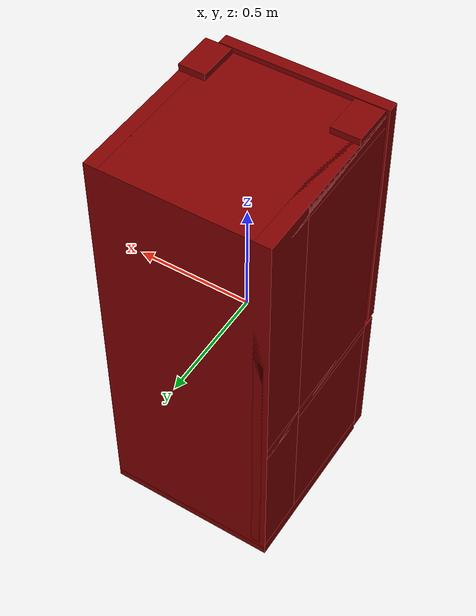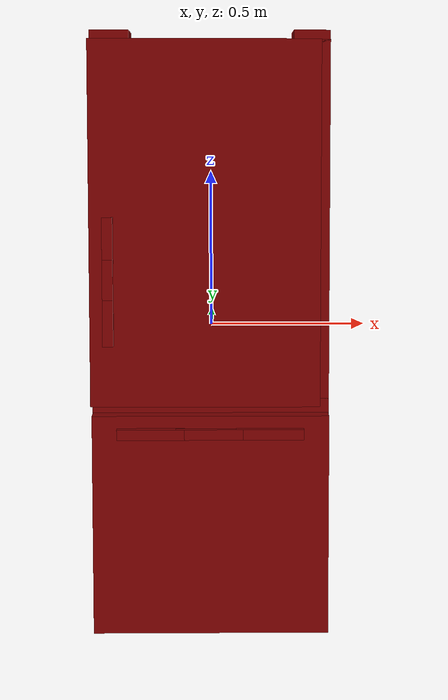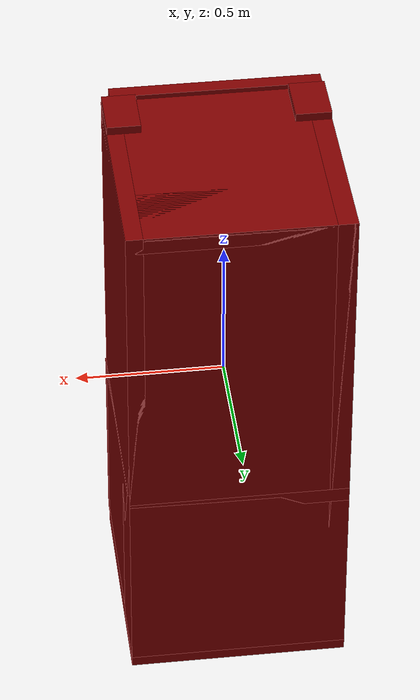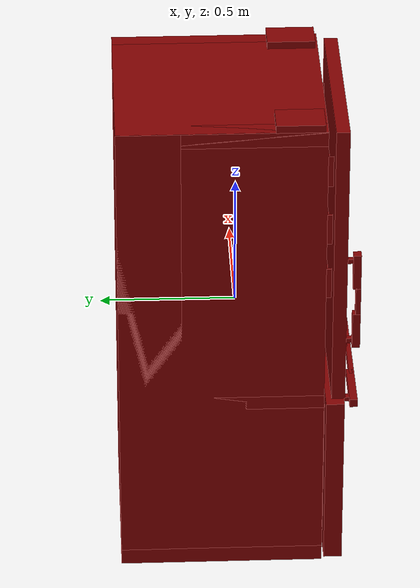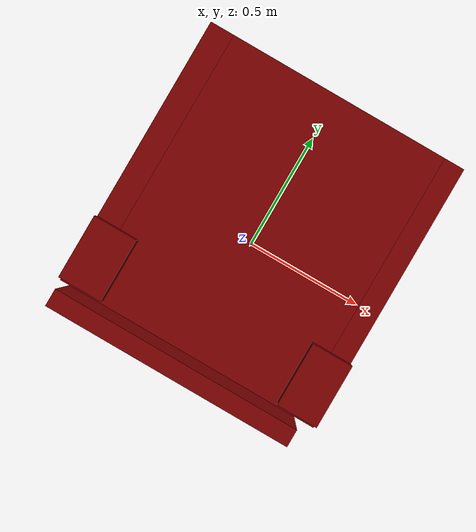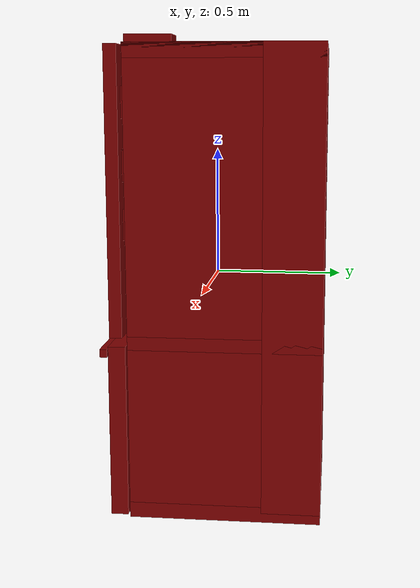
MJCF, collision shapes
<?xml version='1.0' encoding='UTF-8'?>
<mujoco model="model">
  <option timestep="0.002" gravity="0.0 0.0 -9.81"/>
  <compiler angle="radian"/>
  <asset>
    <mesh file="visuals/freezer0.obj" name="freezer0_vis"/>
    <mesh file="visuals/fridge_door.obj" name="fridge_door_vis"/>
    <mesh file="visuals/fridge_door_Clear.obj" name="fridge_door_Clear_vis"/>
    <mesh file="visuals/fridge_drawer0.obj" name="fridge_drawer0_vis"/>
    <mesh file="visuals/Body001.obj" name="Body001_vis"/>
    <texture file="visuals/T_BC001.png" name="Body001_material" type="2d"/>
    <material name="Body001_material" rgba="1 1 1 1.0" texture="Body001_material" shininess="0.1" specular="5"/>
    <texture file="visuals/T_BC001.png" name="freezer0_material" type="2d"/>
    <material name="freezer0_material" rgba="1 1 1 1.0" texture="freezer0_material" shininess="0.1" specular="5"/>
    <texture file="visuals/T_BC001.png" name="fridge_door_material" type="2d"/>
    <material name="fridge_door_material" rgba="1 1 1 1.0" texture="fridge_door_material" shininess="0.1" specular="5"/>
    <material name="fridge_door_Clear_material" rgba="0.5882353186607361 0.5882353186607361 0.5882353186607361 0.699999988079071" shininess="0.141421377658844" specular="0.3"/>
    <texture file="visuals/T_BC001.png" name="fridge_drawer0_material" type="2d"/>
    <material name="fridge_drawer0_material" rgba="1 1 1 1.0" texture="fridge_drawer0_material" shininess="0.1" specular="5"/>
  </asset>
  <default>
    <default class="visual">
      <geom conaffinity="0" contype="0" group="1" type="mesh"/>
    </default>
    <default class="collision">
      <geom group="0" rgba="0.5 0 0 0.5" density="1000.0"/>
    </default>
    <default class="spawn">
      <geom group="0" rgba="1 1 1 0.5" contype="0" conaffinity="0"/>
      <site group="0" rgba="1 1 1 0.5"/>
    </default>
    <default class="region">
      <geom group="1" conaffinity="0" contype="0" rgba="0 1 0 0" mass="0"/>
    </default>
  </default>
  <worldbody>
    <body>
      <body name="object">
        <geom mesh="Body001_vis" type="mesh" solimp="0.998 0.998 0.001" solref="0.001 1" friction="0.95 0.3 0.1" class="visual" material="Body001_material"/>
        <geom class="collision" type="box" pos="0.00000000 0.32476748 0.00438844" size="0.36860865354537964 0.11534851789474487 0.9032153487205505" quat="1.0 0.0 0.0 0.0"/>
        <geom class="collision" type="box" pos="0.34039435 0.06442849 0.01505143" size="0.02821429818868637 0.37568747997283936 0.8925526738166809" quat="1.0 0.0 0.0 0.0"/>
        <geom class="collision" type="box" pos="-0.33534691 0.06442849 0.01678793" size="0.0332617461681366 0.37568747997283936 0.8908159732818604" quat="1.0 0.0 0.0 0.0"/>
        <geom class="collision" type="box" pos="-0.00000001 0.06442849 -0.90437014" size="0.36860865354537964 0.37568747997283936 0.03111211210489273" quat="1.0 0.0 0.0 0.0"/>
        <geom class="collision" type="box" pos="-0.00000001 0.06442849 -0.22521112" size="0.36860865354537964 0.37568747997283936 0.02653501182794571" quat="1.0 0.0 0.0 0.0"/>
        <geom class="collision" type="box" pos="-0.00000001 0.06442849 0.87887465" size="0.36860865354537964 0.37568747997283936 0.028729252517223358" quat="1.0 0.0 0.0 0.0"/>
        <geom class="collision" type="box" pos="0.00487410 -0.02653749 0.51555984" size="0.30914589762687683 0.23776639997959137 0.0036524159368127584" quat="1.0 0.0 0.0 0.0"/>
        <geom class="collision" type="box" pos="0.00932745 -0.02653774 0.15526479" size="0.31359925866127014 0.23776637017726898 0.0036524743773043156" quat="1.0 0.0 0.0 0.0"/>
        <geom class="collision" type="box" pos="-0.30858055 -0.21340834 0.92115354" size="0.06002810597419739 0.08773642778396606 0.014327946119010448" quat="1.0 0.0 0.0 0.0"/>
        <geom class="collision" type="box" pos="0.31252167 -0.21340834 0.92115354" size="0.056086938828229904 0.08773642778396606 0.014327946119010448" quat="1.0 0.0 0.0 0.0"/>
        <body name="freezer0">
          <geom class="region" name="reg_freezer0" type="box" pos="0.0005977600000000027 -0.06814390999999999 -0.577884075" size="0.26197484 0.24580666 0.274555175"/>
          <joint axis="0.0 -1.0 0.0" pos="0.00016387 -0.11970034 -0.58081520" limited="true" name="freezer0_door_joint" range="0.0 0.45" type="slide" damping="1" frictionloss="1" armature=".01" stiffness="0.05"/>
          <geom mesh="freezer0_vis" type="mesh" solimp="0.998 0.998 0.001" solref="0.001 1" friction="0.95 0.3 0.1" class="visual" material="freezer0_material"/>
          <geom class="collision" type="box" pos="0.00016384 -0.35371634 -0.58450116" size="0.3652464747428894 0.033932894468307495 0.34308695793151855" quat="1.0 0.0 0.0 0.0" name="freezer0_door_main"/>
          <geom class="collision" type="box" pos="-0.00035763 -0.06191284 -0.85908920" size="0.2865025997161865 0.25947532057762146 0.0022460094187408686" quat="1.0 0.0 0.0 0.0"/>
          <geom class="collision" type="box" pos="-0.00087134 0.19639329 -0.57960100" size="0.2749098837375641 0.003318801522254944 0.2808021008968353" quat="1.0 0.0 0.0 0.0"/>
          <geom class="collision" type="box" pos="0.27108222 -0.06490180 -0.57960100" size="0.0029563254211097956 0.2588312029838562 0.28077781200408936" quat="1.0 0.0 0.0 0.0"/>
          <geom class="collision" type="box" pos="-0.27374226 -0.06494858 -0.57960100" size="0.0020535786170512438 0.2587832510471344 0.2807766795158386" quat="1.0 0.0 0.0 0.0"/>
          <geom class="collision" type="box" pos="-0.00307937 -0.43198093 -0.29061986" size="0.10273987799882889 0.009457274340093136 0.016109464690089226" quat="1.0 0.0 0.0 0.0" name="freezer0_door_handle_main"/>
          <geom class="collision" type="box" pos="0.18242517 -0.42649262 -0.29061986" size="0.10332302004098892 0.014605683274567127 0.01610950194299221" quat="1.0 0.0 0.0 0.0" name="freezer0_door_handle_1"/>
          <geom class="collision" type="box" pos="-0.18266273 -0.42691731 -0.29061989" size="0.10332286357879639 0.014605638571083546 0.016109472140669823" quat="1.0 0.0 0.0 0.0" name="freezer0_door_handle_2"/>
          <geom class="collision" type="box" pos="0.24477845 -0.40195005 -0.29015333" size="0.012766133062541485 0.014697722159326077 0.008703116327524185" quat="1.0 0.0 0.0 0.0" name="freezer0_door_handle_3"/>
          <geom class="collision" type="box" pos="-0.24687779 -0.40195005 -0.29015336" size="0.01276610791683197 0.014697697944939137 0.008703097701072693" quat="1.0 0.0 0.0 0.0" name="freezer0_door_handle_4"/>
        </body>
        <body name="fridge_door">
          <joint axis="0.0 0.0 1.0" pos="0.33044082 -0.35018053 0.34318551" limited="true" name="fridge_door_joint" range="0.0 1.5707963267948966" type="hinge" damping="1" frictionloss="1" armature=".01" stiffness="0.05"/>
          <geom mesh="fridge_door_vis" type="mesh" solimp="0.998 0.998 0.001" solref="0.001 1" friction="0.95 0.3 0.1" class="visual" material="fridge_door_material"/>
          <geom class="collision" type="box" pos="-0.01586867 -0.36280634 0.34565841" size="0.35274001955986023 0.024842990562319756 0.5588772296905518" quat="1.0 0.0 0.0 0.0" name="fridge_door_main"/>
          <geom class="collision" type="box" pos="-0.31026670 -0.40195005 0.34252369" size="0.0087030790746212 0.014697672799229622 0.008720160461962223" quat="1.0 0.0 0.0 0.0" name="fridge_door_handle_3"/>
          <geom class="collision" type="box" pos="-0.31026670 -0.40195005 0.00668682" size="0.0087030790746212 0.014697672799229622 0.008720160461962223" quat="1.0 0.0 0.0 0.0" name="fridge_door_handle_4"/>
          <geom class="collision" type="box" pos="-0.30980018 -0.42649262 0.29993188" size="0.016111290082335472 0.014606554061174393 0.07058488577604294" quat="1.0 0.0 0.0 0.0" name="fridge_door_handle_1"/>
          <geom class="collision" type="box" pos="-0.30980018 -0.42691731 0.05055036" size="0.016111230477690697 0.014606510289013386 0.07058458030223846" quat="1.0 0.0 0.0 0.0" name="fridge_door_handle_2"/>
          <geom class="collision" type="box" pos="-0.30980018 -0.43198093 0.17321882" size="0.016111161559820175 0.009458071552217007 0.07018616050481796" quat="1.0 0.0 0.0 0.0" name="fridge_door_handle_main"/>
          <geom class="collision" type="box" pos="0.00294145 -0.35718756 0.44902595" size="0.2734219431877136 0.0029092642944306135 0.0609610341489315" quat="1.0 0.0 0.0 0.0"/>
          <geom class="collision" type="box" pos="0.00294145 -0.35718756 0.68996351" size="0.2734219431877136 0.0029092642944306135 0.060961026698350906" quat="1.0 0.0 0.0 0.0"/>
          <geom class="collision" type="box" pos="0.00294145 -0.35718756 0.22273982" size="0.2734219431877136 0.0029092642944306135 0.0609610341489315" quat="1.0 0.0 0.0 0.0"/>
          <geom class="collision" type="box" pos="0.00350003 -0.26537450 0.22273982" size="0.26612183451652527 0.0029092642944306135 0.0609610341489315" quat="1.0 0.0 0.0 0.0"/>
          <geom class="collision" type="box" pos="0.00350003 -0.26537450 0.68996351" size="0.26612183451652527 0.0029092642944306135 0.060961026698350906" quat="1.0 0.0 0.0 0.0"/>
          <geom class="collision" type="box" pos="0.00350003 -0.26537450 0.45017417" size="0.26612183451652527 0.0029092642944306135 0.0609610341489315" quat="1.0 0.0 0.0 0.0"/>
          <geom class="collision" type="box" pos="-0.26637334 -0.31128072 0.22273984" size="0.002909292932599783 0.048264432698488235 0.0609610341489315" quat="1.0 0.0 0.0 0.0"/>
          <geom class="collision" type="box" pos="-0.26637334 -0.31128072 0.68996351" size="0.002909292932599783 0.048264432698488235 0.060961026698350906" quat="1.0 0.0 0.0 0.0"/>
          <geom class="collision" type="box" pos="-0.26637334 -0.31128072 0.44902595" size="0.002909292932599783 0.048264432698488235 0.0609610341489315" quat="1.0 0.0 0.0 0.0"/>
          <geom class="collision" type="box" pos="0.27257055 -0.31128066 0.22273984" size="0.0029092931654304266 0.048264432698488235 0.0609610341489315" quat="1.0 0.0 0.0 0.0"/>
          <geom class="collision" type="box" pos="0.27257055 -0.31128066 0.68996351" size="0.0029092931654304266 0.048264432698488235 0.060961026698350906" quat="1.0 0.0 0.0 0.0"/>
          <geom class="collision" type="box" pos="0.27257055 -0.31128066 0.45017417" size="0.0029092931654304266 0.048264432698488235 0.0609610341489315" quat="1.0 0.0 0.0 0.0"/>
          <geom class="collision" type="box" pos="0.00350003 -0.31131911 0.16515448" size="0.26612183451652527 0.04291462525725365 0.003375692293047905" quat="1.0 0.0 0.0 0.0"/>
          <geom class="collision" type="box" pos="0.00350003 -0.31131911 0.63237815" size="0.26612183451652527 0.04291462525725365 0.0033756857737898827" quat="1.0 0.0 0.0 0.0"/>
          <geom class="collision" type="box" pos="0.00350003 -0.31131911 0.39144059" size="0.26612183451652527 0.04291462525725365 0.0033756988123059273" quat="1.0 0.0 0.0 0.0"/>
          <body name="fridge_door_Clear">
            <geom mesh="fridge_door_Clear_vis" type="mesh" solimp="0.998 0.998 0.001" solref="0.001 1" friction="0.95 0.3 0.1" class="visual" material="fridge_door_Clear_material"/>
            <geom class="collision" type="box" pos="0.00294145 -0.35718756 0.44902595" size="0.2734219431877136 0.0029092642944306135 0.0609610341489315" quat="1.0 0.0 0.0 0.0"/>
            <geom class="collision" type="box" pos="0.00294145 -0.35718756 0.68996351" size="0.2734219431877136 0.0029092642944306135 0.060961026698350906" quat="1.0 0.0 0.0 0.0"/>
            <geom class="collision" type="box" pos="0.00294145 -0.35718756 0.22273982" size="0.2734219431877136 0.0029092642944306135 0.0609610341489315" quat="1.0 0.0 0.0 0.0"/>
            <geom class="collision" type="box" pos="0.00350003 -0.26537450 0.22273982" size="0.26612183451652527 0.0029092642944306135 0.0609610341489315" quat="1.0 0.0 0.0 0.0"/>
            <geom class="collision" type="box" pos="0.00350003 -0.26537450 0.68996351" size="0.26612183451652527 0.0029092642944306135 0.060961026698350906" quat="1.0 0.0 0.0 0.0"/>
            <geom class="collision" type="box" pos="0.00350003 -0.26537450 0.45017417" size="0.26612183451652527 0.0029092642944306135 0.0609610341489315" quat="1.0 0.0 0.0 0.0"/>
            <geom class="collision" type="box" pos="-0.26637334 -0.31128072 0.22273984" size="0.002909292932599783 0.048264432698488235 0.0609610341489315" quat="1.0 0.0 0.0 0.0"/>
            <geom class="collision" type="box" pos="-0.26637334 -0.31128072 0.68996351" size="0.002909292932599783 0.048264432698488235 0.060961026698350906" quat="1.0 0.0 0.0 0.0"/>
            <geom class="collision" type="box" pos="-0.26637334 -0.31128072 0.44902595" size="0.002909292932599783 0.048264432698488235 0.0609610341489315" quat="1.0 0.0 0.0 0.0"/>
            <geom class="collision" type="box" pos="0.27257055 -0.31128066 0.22273984" size="0.0029092931654304266 0.048264432698488235 0.0609610341489315" quat="1.0 0.0 0.0 0.0"/>
            <geom class="collision" type="box" pos="0.27257055 -0.31128066 0.68996351" size="0.0029092931654304266 0.048264432698488235 0.060961026698350906" quat="1.0 0.0 0.0 0.0"/>
            <geom class="collision" type="box" pos="0.27257055 -0.31128066 0.45017417" size="0.0029092931654304266 0.048264432698488235 0.0609610341489315" quat="1.0 0.0 0.0 0.0"/>
            <geom class="collision" type="box" pos="0.00350003 -0.31131911 0.16515448" size="0.26612183451652527 0.04291462525725365 0.003375692293047905" quat="1.0 0.0 0.0 0.0"/>
            <geom class="collision" type="box" pos="0.00350003 -0.31131911 0.63237815" size="0.26612183451652527 0.04291462525725365 0.0033756857737898827" quat="1.0 0.0 0.0 0.0"/>
            <geom class="collision" type="box" pos="0.00350003 -0.31131911 0.39144059" size="0.26612183451652527 0.04291462525725365 0.0033756988123059273" quat="1.0 0.0 0.0 0.0"/>
          </body>
        </body>
        <body name="fridge_drawer0">
          <geom class="region" name="reg_fridge_drawer0" type="box" pos="-0.0022812200000000005 -0.027923174999999995 -0.021492039999999997" size="0.25517051 0.203650145 0.12844901"/>
          <joint axis="0.0 -1.0 0.0" pos="-0.00280036 -0.03939809 -0.01746349" limited="true" name="fridge_drawer0_joint" range="0.0 0.45" type="slide" damping="1" frictionloss="1" armature=".01" stiffness="0.05"/>
          <geom mesh="fridge_drawer0_vis" type="mesh" solimp="0.998 0.998 0.001" solref="0.001 1" friction="0.95 0.3 0.1" class="visual" material="fridge_drawer0_material"/>
          <geom class="collision" type="box" pos="-0.00190419 -0.25374591 0.09212142" size="0.27651771903038025 0.015158544294536114 0.052633240818977356" quat="1.0 0.0 0.0 0.0"/>
          <geom class="collision" type="box" pos="-0.00245476 -0.02863624 -0.16030447" size="0.2609606981277466 0.21130003035068512 0.004161832854151726" quat="1.0 0.0 0.0 0.0"/>
          <geom class="collision" type="box" pos="0.00022329 0.18635856 -0.02461933" size="0.2611335813999176 0.005564771592617035 0.13475356996059418" quat="1.0 0.0 0.0 0.0"/>
          <geom class="collision" type="box" pos="-0.26897025 -0.02621998 -0.02536355" size="0.005672925617545843 0.21381010115146637 0.13400934636592865" quat="1.0 0.0 0.0 0.0"/>
          <geom class="collision" type="box" pos="0.26440337 -0.02051456 -0.02410535" size="0.0056729442439973354 0.21951691806316376 0.13526755571365356" quat="1.0 0.0 0.0 0.0"/>
          <geom class="collision" type="box" pos="-0.00190419 -0.25305530 -0.10862739" size="0.2765556275844574 0.015851600095629692 0.07450445741415024" quat="1.0 0.0 0.0 0.0"/>
          <geom class="collision" type="box" pos="-0.16158637 -0.25374591 0.00112619" size="0.11688004434108734 0.01516104768961668 0.03786835819482803" quat="1.0 0.0 0.0 0.0"/>
          <geom class="collision" type="box" pos="0.18111624 -0.25374591 0.00112619" size="0.09242182970046997 0.015161124989390373 0.03786835819482803" quat="1.0 0.0 0.0 0.0"/>
          <geom class="collision" type="box" pos="0.02332511 -0.26639342 0.02666901" size="0.06702528148889542 0.0025141495279967785 0.012567557394504547" quat="1.0 0.0 0.0 0.0"/>
          <geom class="collision" type="box" pos="0.02332511 -0.24027177 0.00145147" size="0.0670255720615387 0.0013392468681558967 0.036608051508665085" quat="1.0 0.0 0.0 0.0"/>
        </body>
        <geom class="region" name="reg_fridge_shelf0" type="box" pos="0.004836960000000001 -0.026458844999999995 0.33568252" size="0.30238062 0.23052241499999998 0.1712684"/>
        <geom class="region" name="reg_fridge_shelf1" type="box" pos="0.004836960000000001 -0.026458844999999995 0.68532198" size="0.30238062 0.23052241499999998 0.16036905"/>
        <geom class="region" name="reg_main" type="box" pos="4.999999997368221e-09 0.026233350000000016 -3.9499999998637847e-07" size="0.369608685 0.41488263999999997 0.9364819050000001"/>
      </body>
    </body>
  </worldbody>
  <actuator>
    <motor name="freezer0_door_joint_actuator" joint="freezer0_door_joint" gear="50"/>
    <motor name="fridge_door_joint_actuator" joint="fridge_door_joint" gear="50"/>
    <motor name="fridge_drawer0_joint_actuator" joint="fridge_drawer0_joint" gear="50"/>
  </actuator>
</mujoco>
